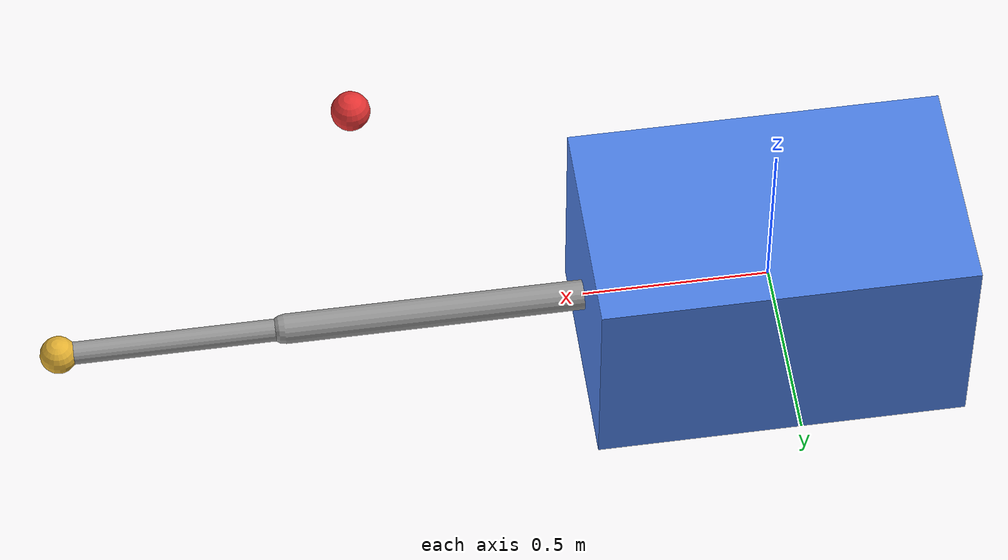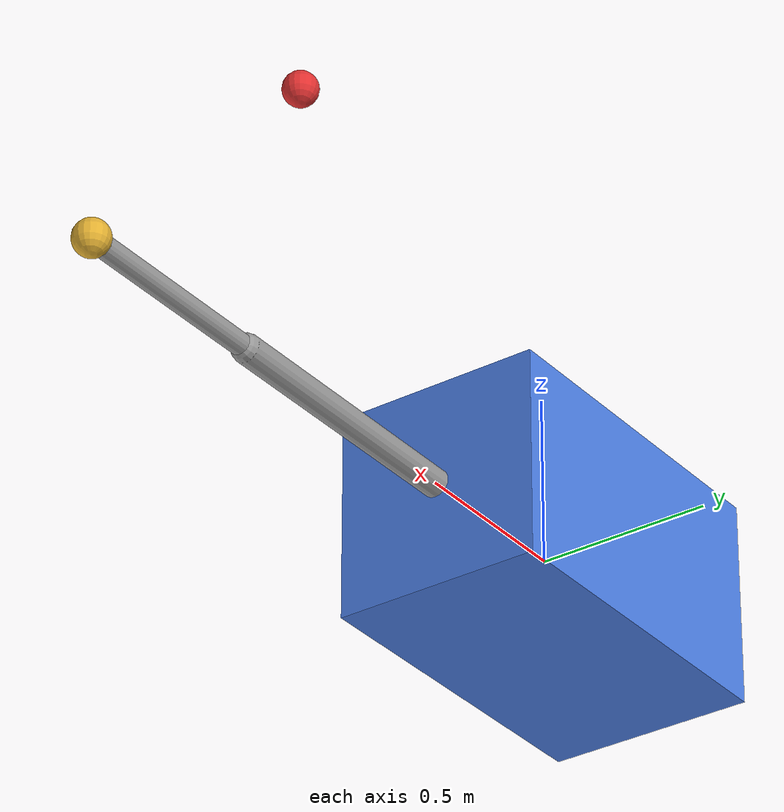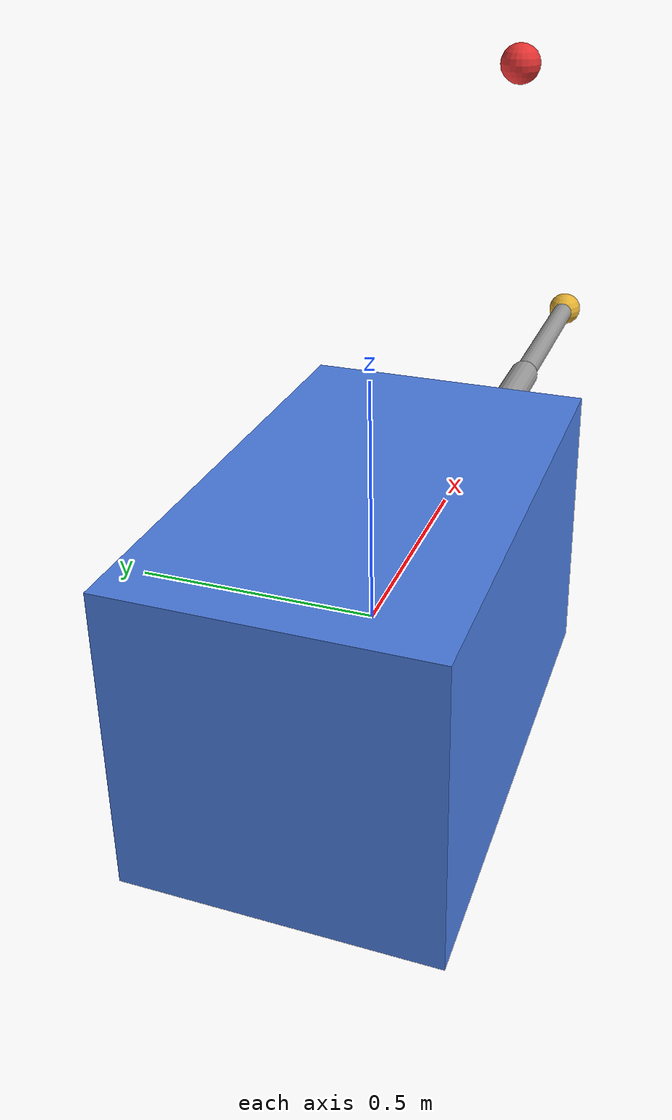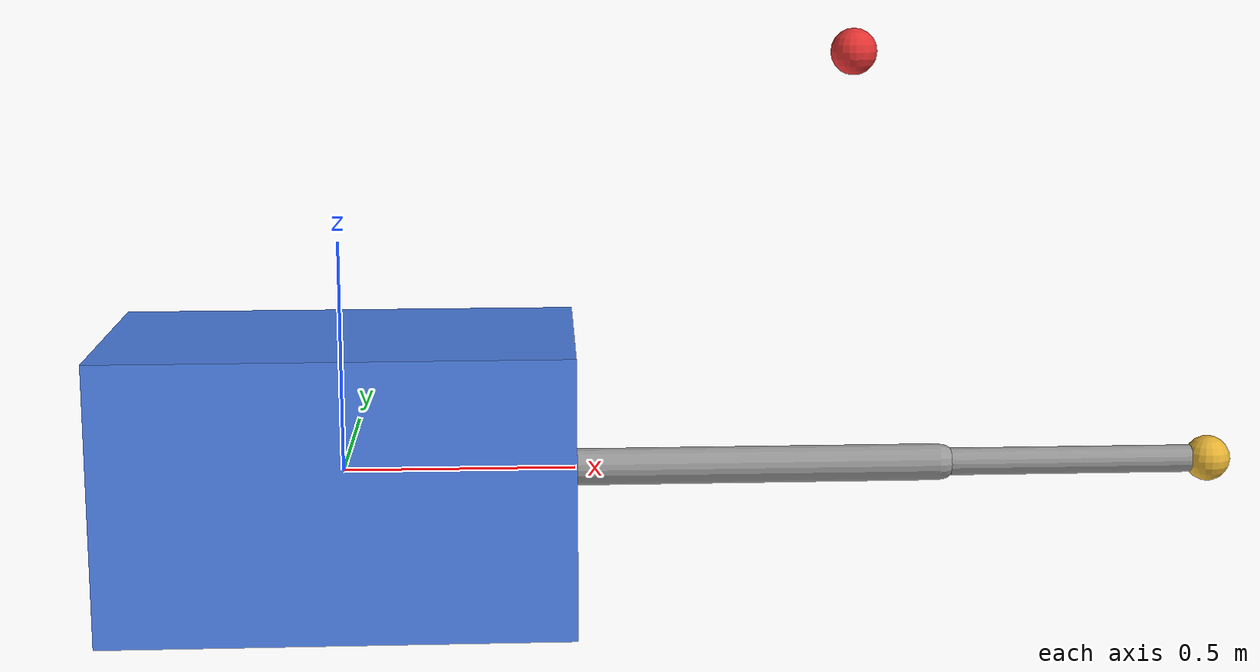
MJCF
<mujoco model="spacecraft_arm_reach">
  <compiler angle="radian"/>
  <option timestep="0.01" gravity="0 0 0"/>

  <default>
    <joint damping="0.5" armature="0.01"/>
    <geom rgba="0.6 0.6 0.6 1"/>
  </default>

  <worldbody>
    <site name="target" pos="1.1 0.0 0.9" size="0.05" rgba="0.9 0.2 0.2 1"/>

    <!-- Spacecraft bus — free-floating base -->
    <body name="spacecraft" pos="0 0 0">
      <freejoint name="base"/>
      <geom type="box" size="0.5 0.3 0.3" mass="200" rgba="0.3 0.5 0.9 1"/>

      <!-- Shoulder joint -->
      <body name="link1" pos="0.5 0 0">
        <joint name="shoulder" type="hinge" axis="0 1 0" range="-3.14 3.14"/>
        <geom type="capsule" fromto="0 0 0 0.8 0 0" size="0.04" mass="5"/>

        <!-- Elbow joint -->
        <body name="link2" pos="0.8 0 0">
          <joint name="elbow" type="hinge" axis="0 1 0" range="-3.14 3.14"/>
          <geom type="capsule" fromto="0 0 0 0.6 0 0" size="0.03" mass="3"/>

          <!-- End effector -->
          <body name="ee" pos="0.6 0 0">
            <geom type="sphere" size="0.05" mass="1" rgba="0.9 0.7 0.2 1"/>
          </body>
        </body>
      </body>
    </body>
  </worldbody>

  <actuator>
    <!-- kv adds joint-rate feedback: with joint damping alone these position
         servos are heavily underdamped (zeta ~ 0.03 at the shoulder) and the
         arm rings. -->
    <position name="shoulder" joint="shoulder" kp="20" kv="10" ctrlrange="-3.14 3.14"/>
    <position name="elbow" joint="elbow" kp="20" kv="4" ctrlrange="-3.14 3.14"/>
  </actuator>

  <sensor>
    <framepos name="ee_pos" objtype="body" objname="ee"/>
    <framepos name="target_pos" objtype="site" objname="target"/>
  </sensor>

  <mjorbit use_j2="false" use_drag="false" use_srp="false" use_magnetic="false">
  </mjorbit>
</mujoco>
